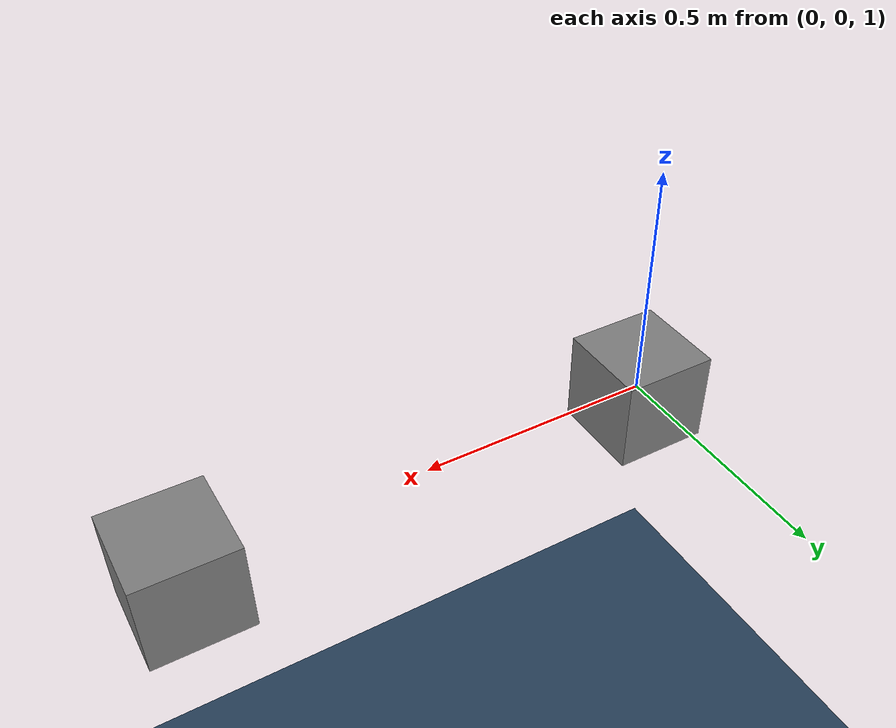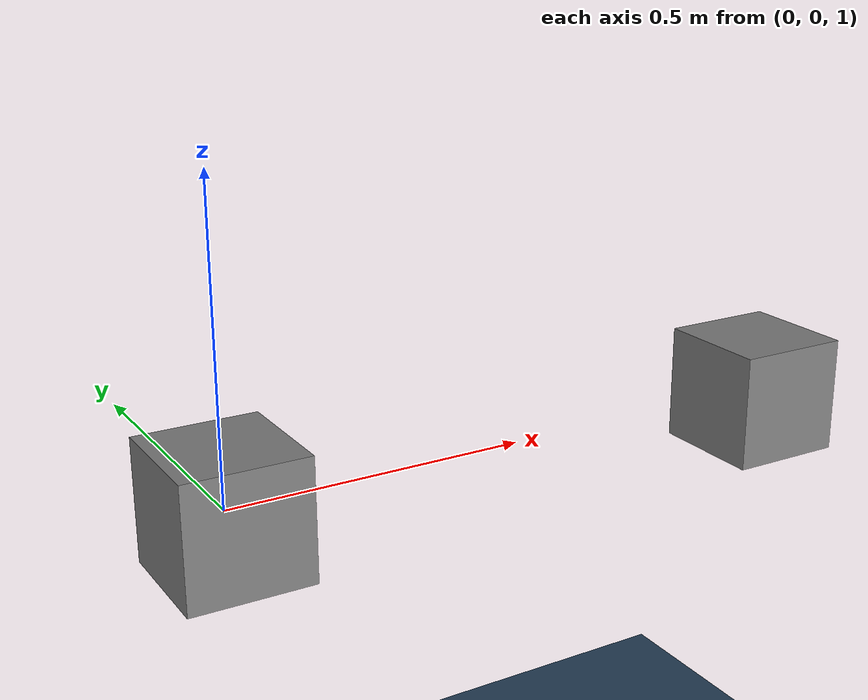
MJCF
<mujoco>
  <visual>
    <headlight diffuse="0.6 0.6 0.6" ambient="0.3 0.3 0.3" specular="0 0 0"/>
    <rgba haze="0.15 0.25 0.35 1"/>
    <global azimuth="-120" elevation="-20"/>
  </visual>

  <asset>
    <texture type="skybox" builtin="gradient" rgb1="0.3 0.5 0.7" rgb2="0 0 0" width="512" height="3072"/>
    <texture type="2d" name="groundplane" builtin="checker" mark="edge" rgb1="0.2 0.3 0.4" rgb2="0.1 0.2 0.3"
      markrgb="0.8 0.8 0.8" width="300" height="300"/>
    <material name="groundplane" texture="groundplane" texuniform="true" texrepeat="5 5" reflectance="0.2"/>
  </asset>

  <worldbody>
    <body name="box1" pos="0 0 1">
      <joint name="box1_joint" type="ball"/>
      <geom type="box" size="0.1 0.1 0.1"/>
    </body>
    <body name="box2" pos="1 0 1">
      <joint name="box2_joint" type="ball"/>
      <geom type="box" size="0.1 0.1 0.1"/>
    </body>

    <light pos="0 0 1.5" dir="0 0 -1" directional="true"/>
    <geom name="floor" pos="0 0 -0.1" size="0 0 0.05" type="plane" material="groundplane"/>
  </worldbody>
  <equality>
    <weld body1="box1" body2="box2" active="false" solref="0.02 1" solimp="0.9 0.95 0.001"/>
  </equality>
</mujoco>
